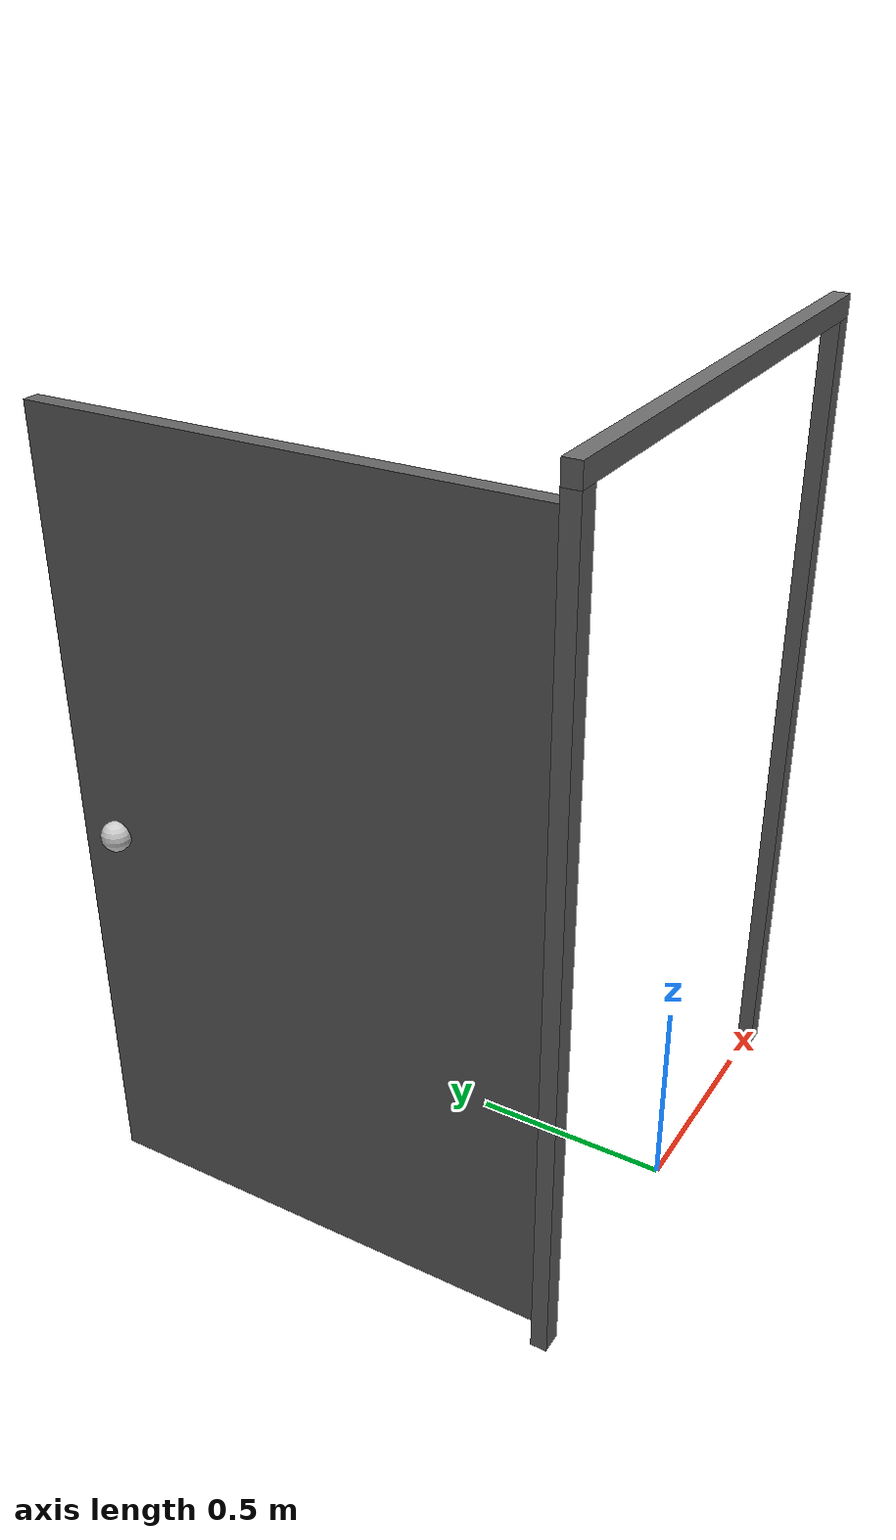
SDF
<?xml version="1.0"?>
<sdf version="1.7">
  <model name="door_steel_round">
    <static>true</static>

    <!-- =========================
         LINK: frame (trim around opening)
       ========================= -->
    <link name="frame">
      <pose>0 0 0 0 0 0</pose>

      <!-- Frame params -->
      <!-- trim_w (thickness in X) = 0.05 -->
      <!-- trim_d (depth in Y)     = 0.04 (matches door thickness vibe) -->
      <!-- opening_w              = 1.30 -->
      <!-- opening_h              = 2.00 -->
      <!-- trim centers -->
      <!-- left  x =
       + 0.025 = -0.625 -->
      <!-- right x = +0.65 - 0.025 = +0.625 -->
      <!-- vertical center z = opening_h/2 = 1.00 -->
      <!-- top trim center z = opening_h + trim_w/2 = 2.00 + 0.025 = 2.025 -->

      <visual name="trim_left_vis">
        <pose>-0.625 0 1.00 0 0 0</pose>
        <geometry><box><size>0.05 0.04 2.00</size></box></geometry>
        <material>
          <ambient>0.28 0.28 0.28 1</ambient>
          <diffuse>0.42 0.42 0.42 1</diffuse>
          <specular>0.65 0.65 0.65 1</specular>
          <shininess>70</shininess>
        </material>
      </visual>

      <visual name="trim_right_vis">
        <pose>0.625 0 1.00 0 0 0</pose>
        <geometry><box><size>0.05 0.04 2.00</size></box></geometry>
        <material>
          <ambient>0.28 0.28 0.28 1</ambient>
          <diffuse>0.42 0.42 0.42 1</diffuse>
          <specular>0.65 0.65 0.65 1</specular>
          <shininess>70</shininess>
        </material>
      </visual>

      <visual name="trim_top_vis">
        <pose>0 0 2.025 0 0 0</pose>
        <geometry><box><size>1.30 0.04 0.05</size></box></geometry>
        <material>
          <ambient>0.28 0.28 0.28 1</ambient>
          <diffuse>0.42 0.42 0.42 1</diffuse>
          <specular>0.65 0.65 0.65 1</specular>
          <shininess>70</shininess>
        </material>
      </visual>
    </link>

    <!-- =========================
         LINK: door_leaf (hinge origin at hinge point)
       ========================= -->
    <link name="door_leaf">
      <pose>-0.6 0 1.00 0 0 1.5708</pose>

      <!-- Door panel (offset from hinge) -->
      <visual name="door_vis">
        <!-- door center is +0.60 in X from hinge -->
        <pose>0.60 0 0 0 0 0</pose>
        <geometry><box><size>1.20 0.04 1.92</size></box></geometry>
        <material>
          <ambient>0.22 0.22 0.22 1</ambient>
          <diffuse>0.38 0.38 0.38 1</diffuse>
          <specular>0.75 0.75 0.75 1</specular>
          <shininess>85</shininess>
        </material>
      </visual>

      <!-- Knobs near latch side: x ~ 1.10 from hinge -->
      <visual name="knob_out_vis">
        <pose>1.10 0.030 0.00 0 0 0</pose>
        <geometry><sphere><radius>0.035</radius></sphere></geometry>
        <material>
          <ambient>0.60 0.60 0.60 1</ambient>
          <diffuse>0.80 0.80 0.80 1</diffuse>
          <specular>1 1 1 1</specular>
          <shininess>120</shininess>
        </material>
      </visual>

      <visual name="knob_in_vis">
        <pose>1.10 -0.030 0.00 0 0 0</pose>
        <geometry><sphere><radius>0.035</radius></sphere></geometry>
        <material>
          <ambient>0.60 0.60 0.60 1</ambient>
          <diffuse>0.80 0.80 0.80 1</diffuse>
          <specular>1 1 1 1</specular>
          <shininess>120</shininess>
        </material>
      </visual>
    </link>

  </model>
</sdf>
